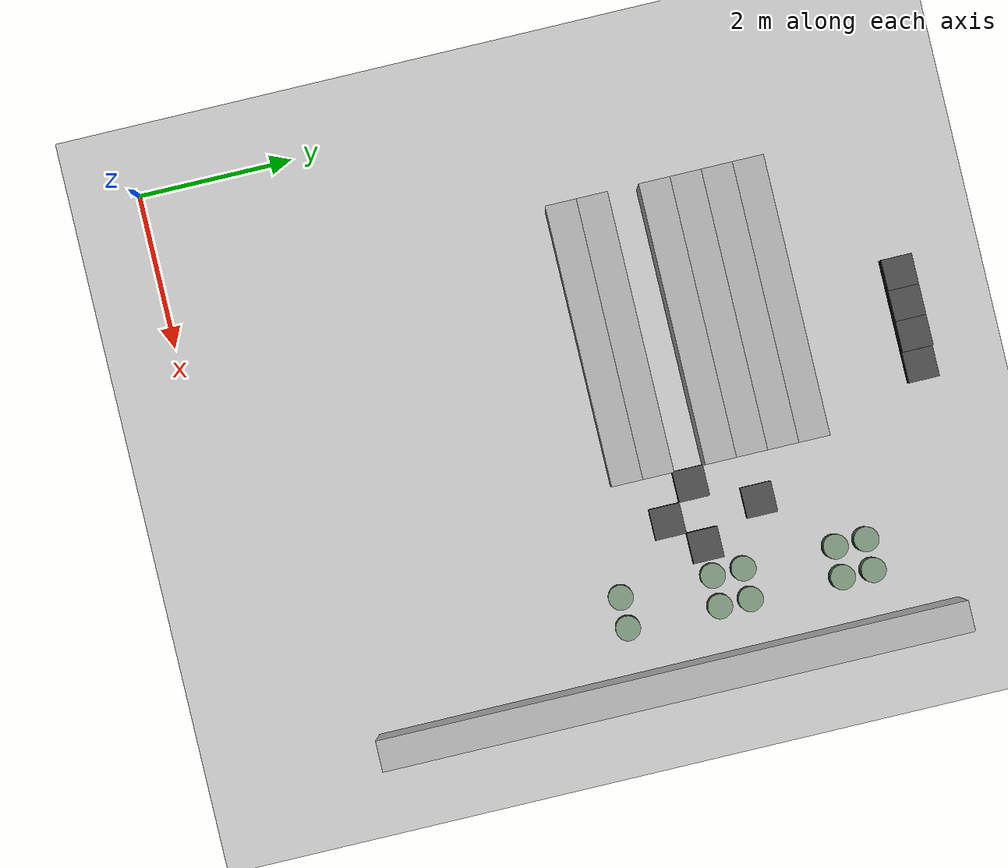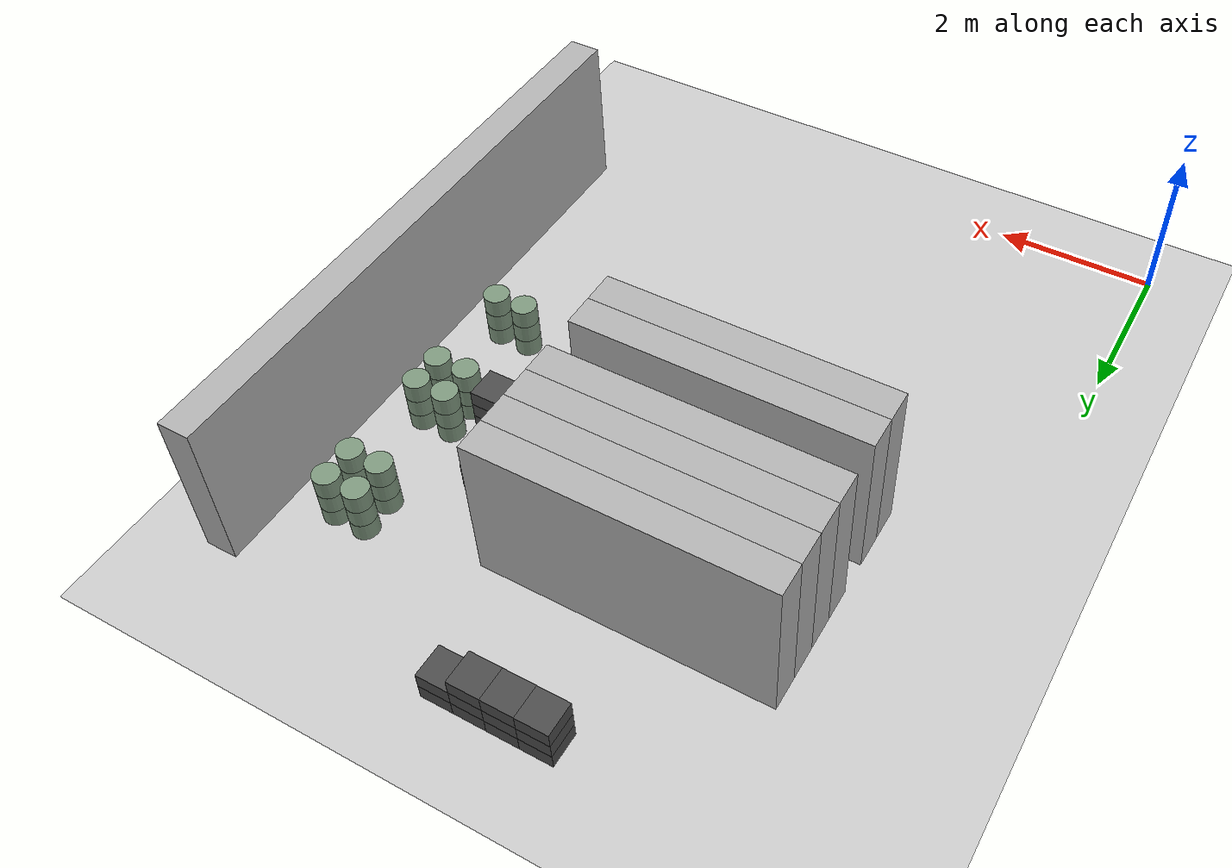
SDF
<sdf version="1.6">
 <world name="default">
  <include><uri>model://ground_plane</uri></include>
  <model name="wall_5">
   <pose frame="sim_world">7.6 5.2 1.0 0 0 0</pose>
   <static>True</static>
   <link name="wall_5_link">
    <inertial>
     <mass>100</mass>
     <inertia>
      <ixx>0.166667</ixx>
      <ixy>0</ixy>
      <ixz>0</ixz>
      <iyy>0.166667</iyy>
      <iyz>0</iyz>
      <izz>0.166667</izz>
     </inertia>
    </inertial>
    <collision name="wall_5_collision">
     <geometry><box><size>0.4 7.6000000000000005 2.0</size></box></geometry>
     <max_contacts>100</max_contacts>
    </collision>
    <visual name="wall_5_visual">
     <geometry><box><size>0.4 7.6000000000000005 2.0</size></box></geometry>
     <material><ambient>0.7 0.7 0.7 1</ambient><diffuse>0.7 0.7 0.7 1</diffuse></material>
    </visual>
   </link>
  </model>
  <model name="wall_17">
   <pose frame="sim_world">3.2 5.2 1.0 0 0 0</pose>
   <static>True</static>
   <link name="wall_17_link">
    <inertial>
     <mass>100</mass>
     <inertia>
      <ixx>0.166667</ixx>
      <ixy>0</ixy>
      <ixz>0</ixz>
      <iyy>0.166667</iyy>
      <iyz>0</iyz>
      <izz>0.166667</izz>
     </inertia>
    </inertial>
    <collision name="wall_17_collision">
     <geometry><box><size>3.6 0.4 2.0</size></box></geometry>
     <max_contacts>100</max_contacts>
    </collision>
    <visual name="wall_17_visual">
     <geometry><box><size>3.6 0.4 2.0</size></box></geometry>
     <material><ambient>0.7 0.7 0.7 1</ambient><diffuse>0.7 0.7 0.7 1</diffuse></material>
    </visual>
   </link>
  </model>
  <model name="wall_18">
   <pose frame="sim_world">3.2 5.6 1.0 0 0 0</pose>
   <static>True</static>
   <link name="wall_18_link">
    <inertial>
     <mass>100</mass>
     <inertia>
      <ixx>0.166667</ixx>
      <ixy>0</ixy>
      <ixz>0</ixz>
      <iyy>0.166667</iyy>
      <iyz>0</iyz>
      <izz>0.166667</izz>
     </inertia>
    </inertial>
    <collision name="wall_18_collision">
     <geometry><box><size>3.6 0.4 2.0</size></box></geometry>
     <max_contacts>100</max_contacts>
    </collision>
    <visual name="wall_18_visual">
     <geometry><box><size>3.6 0.4 2.0</size></box></geometry>
     <material><ambient>0.7 0.7 0.7 1</ambient><diffuse>0.7 0.7 0.7 1</diffuse></material>
    </visual>
   </link>
  </model>
  <model name="wall_19">
   <pose frame="sim_world">3.2 6.4 1.0 0 0 0</pose>
   <static>True</static>
   <link name="wall_19_link">
    <inertial>
     <mass>100</mass>
     <inertia>
      <ixx>0.166667</ixx>
      <ixy>0</ixy>
      <ixz>0</ixz>
      <iyy>0.166667</iyy>
      <iyz>0</iyz>
      <izz>0.166667</izz>
     </inertia>
    </inertial>
    <collision name="wall_19_collision">
     <geometry><box><size>3.6 0.4 2.0</size></box></geometry>
     <max_contacts>100</max_contacts>
    </collision>
    <visual name="wall_19_visual">
     <geometry><box><size>3.6 0.4 2.0</size></box></geometry>
     <material><ambient>0.7 0.7 0.7 1</ambient><diffuse>0.7 0.7 0.7 1</diffuse></material>
    </visual>
   </link>
  </model>
  <model name="wall_20">
   <pose frame="sim_world">3.2 6.8 1.0 0 0 0</pose>
   <static>True</static>
   <link name="wall_20_link">
    <inertial>
     <mass>100</mass>
     <inertia>
      <ixx>0.166667</ixx>
      <ixy>0</ixy>
      <ixz>0</ixz>
      <iyy>0.166667</iyy>
      <iyz>0</iyz>
      <izz>0.166667</izz>
     </inertia>
    </inertial>
    <collision name="wall_20_collision">
     <geometry><box><size>3.6 0.4 2.0</size></box></geometry>
     <max_contacts>100</max_contacts>
    </collision>
    <visual name="wall_20_visual">
     <geometry><box><size>3.6 0.4 2.0</size></box></geometry>
     <material><ambient>0.7 0.7 0.7 1</ambient><diffuse>0.7 0.7 0.7 1</diffuse></material>
    </visual>
   </link>
  </model>
  <model name="wall_21">
   <pose frame="sim_world">3.2 7.2 1.0 0 0 0</pose>
   <static>True</static>
   <link name="wall_21_link">
    <inertial>
     <mass>100</mass>
     <inertia>
      <ixx>0.166667</ixx>
      <ixy>0</ixy>
      <ixz>0</ixz>
      <iyy>0.166667</iyy>
      <iyz>0</iyz>
      <izz>0.166667</izz>
     </inertia>
    </inertial>
    <collision name="wall_21_collision">
     <geometry><box><size>3.6 0.4 2.0</size></box></geometry>
     <max_contacts>100</max_contacts>
    </collision>
    <visual name="wall_21_visual">
     <geometry><box><size>3.6 0.4 2.0</size></box></geometry>
     <material><ambient>0.7 0.7 0.7 1</ambient><diffuse>0.7 0.7 0.7 1</diffuse></material>
    </visual>
   </link>
  </model>
  <model name="wall_22">
   <pose frame="sim_world">3.2 7.6 1.0 0 0 0</pose>
   <static>True</static>
   <link name="wall_22_link">
    <inertial>
     <mass>100</mass>
     <inertia>
      <ixx>0.166667</ixx>
      <ixy>0</ixy>
      <ixz>0</ixz>
      <iyy>0.166667</iyy>
      <iyz>0</iyz>
      <izz>0.166667</izz>
     </inertia>
    </inertial>
    <collision name="wall_22_collision">
     <geometry><box><size>3.6 0.4 2.0</size></box></geometry>
     <max_contacts>100</max_contacts>
    </collision>
    <visual name="wall_22_visual">
     <geometry><box><size>3.6 0.4 2.0</size></box></geometry>
     <material><ambient>0.7 0.7 0.7 1</ambient><diffuse>0.7 0.7 0.7 1</diffuse></material>
    </visual>
   </link>
  </model>
  <model name="box_126">
   <pose frame="sim_world">3.2 9.2 0.1 0 -0 0</pose>
   <static>True</static>
   <link name="box_126_link">
    <inertial>
     <mass>100</mass>
     <inertia>
      <ixx>0.166667</ixx>
      <ixy>0</ixy>
      <ixz>0</ixz>
      <iyy>0.166667</iyy>
      <iyz>0</iyz>
      <izz>0.166667</izz>
     </inertia>
    </inertial>
    <collision name="box_126_collision">
     <geometry><box><size>0.4 0.4 0.2</size></box></geometry>
     <max_contacts>100</max_contacts>
    </collision>
    <visual name="box_126_visual">
     <geometry><box><size>0.4 0.4 0.2</size></box></geometry>
     <material><ambient>0.3 0.3 0.3 1</ambient><diffuse>0.3 0.3 0.3 1</diffuse></material>
    </visual>
   </link>
  </model>
  <model name="box_127">
   <pose frame="sim_world">3.2 9.2 0.3 0 -0 0</pose>
   <static>True</static>
   <link name="box_127_link">
    <inertial>
     <mass>100</mass>
     <inertia>
      <ixx>0.166667</ixx>
      <ixy>0</ixy>
      <ixz>0</ixz>
      <iyy>0.166667</iyy>
      <iyz>0</iyz>
      <izz>0.166667</izz>
     </inertia>
    </inertial>
    <collision name="box_127_collision">
     <geometry><box><size>0.4 0.4 0.2</size></box></geometry>
     <max_contacts>100</max_contacts>
    </collision>
    <visual name="box_127_visual">
     <geometry><box><size>0.4 0.4 0.2</size></box></geometry>
     <material><ambient>0.3 0.3 0.3 1</ambient><diffuse>0.3 0.3 0.3 1</diffuse></material>
    </visual>
   </link>
  </model>
  <model name="box_128">
   <pose frame="sim_world">3.2 9.2 0.5 0 -0 0</pose>
   <static>True</static>
   <link name="box_128_link">
    <inertial>
     <mass>100</mass>
     <inertia>
      <ixx>0.166667</ixx>
      <ixy>0</ixy>
      <ixz>0</ixz>
      <iyy>0.166667</iyy>
      <iyz>0</iyz>
      <izz>0.166667</izz>
     </inertia>
    </inertial>
    <collision name="box_128_collision">
     <geometry><box><size>0.4 0.4 0.2</size></box></geometry>
     <max_contacts>100</max_contacts>
    </collision>
    <visual name="box_128_visual">
     <geometry><box><size>0.4 0.4 0.2</size></box></geometry>
     <material><ambient>0.3 0.3 0.3 1</ambient><diffuse>0.3 0.3 0.3 1</diffuse></material>
    </visual>
   </link>
  </model>
  <model name="box_138">
   <pose frame="sim_world">3.6 9.2 0.1 0 -0 0</pose>
   <static>True</static>
   <link name="box_138_link">
    <inertial>
     <mass>100</mass>
     <inertia>
      <ixx>0.166667</ixx>
      <ixy>0</ixy>
      <ixz>0</ixz>
      <iyy>0.166667</iyy>
      <iyz>0</iyz>
      <izz>0.166667</izz>
     </inertia>
    </inertial>
    <collision name="box_138_collision">
     <geometry><box><size>0.4 0.4 0.2</size></box></geometry>
     <max_contacts>100</max_contacts>
    </collision>
    <visual name="box_138_visual">
     <geometry><box><size>0.4 0.4 0.2</size></box></geometry>
     <material><ambient>0.3 0.3 0.3 1</ambient><diffuse>0.3 0.3 0.3 1</diffuse></material>
    </visual>
   </link>
  </model>
  <model name="box_139">
   <pose frame="sim_world">3.6 9.2 0.3 0 -0 0</pose>
   <static>True</static>
   <link name="box_139_link">
    <inertial>
     <mass>100</mass>
     <inertia>
      <ixx>0.166667</ixx>
      <ixy>0</ixy>
      <ixz>0</ixz>
      <iyy>0.166667</iyy>
      <iyz>0</iyz>
      <izz>0.166667</izz>
     </inertia>
    </inertial>
    <collision name="box_139_collision">
     <geometry><box><size>0.4 0.4 0.2</size></box></geometry>
     <max_contacts>100</max_contacts>
    </collision>
    <visual name="box_139_visual">
     <geometry><box><size>0.4 0.4 0.2</size></box></geometry>
     <material><ambient>0.3 0.3 0.3 1</ambient><diffuse>0.3 0.3 0.3 1</diffuse></material>
    </visual>
   </link>
  </model>
  <model name="box_140">
   <pose frame="sim_world">3.6 9.2 0.5 0 -0 0</pose>
   <static>True</static>
   <link name="box_140_link">
    <inertial>
     <mass>100</mass>
     <inertia>
      <ixx>0.166667</ixx>
      <ixy>0</ixy>
      <ixz>0</ixz>
      <iyy>0.166667</iyy>
      <iyz>0</iyz>
      <izz>0.166667</izz>
     </inertia>
    </inertial>
    <collision name="box_140_collision">
     <geometry><box><size>0.4 0.4 0.2</size></box></geometry>
     <max_contacts>100</max_contacts>
    </collision>
    <visual name="box_140_visual">
     <geometry><box><size>0.4 0.4 0.2</size></box></geometry>
     <material><ambient>0.3 0.3 0.3 1</ambient><diffuse>0.3 0.3 0.3 1</diffuse></material>
    </visual>
   </link>
  </model>
  <model name="box_150">
   <pose frame="sim_world">4.0 9.2 0.1 0 -0 0</pose>
   <static>True</static>
   <link name="box_150_link">
    <inertial>
     <mass>100</mass>
     <inertia>
      <ixx>0.166667</ixx>
      <ixy>0</ixy>
      <ixz>0</ixz>
      <iyy>0.166667</iyy>
      <iyz>0</iyz>
      <izz>0.166667</izz>
     </inertia>
    </inertial>
    <collision name="box_150_collision">
     <geometry><box><size>0.4 0.4 0.2</size></box></geometry>
     <max_contacts>100</max_contacts>
    </collision>
    <visual name="box_150_visual">
     <geometry><box><size>0.4 0.4 0.2</size></box></geometry>
     <material><ambient>0.3 0.3 0.3 1</ambient><diffuse>0.3 0.3 0.3 1</diffuse></material>
    </visual>
   </link>
  </model>
  <model name="box_151">
   <pose frame="sim_world">4.0 9.2 0.3 0 -0 0</pose>
   <static>True</static>
   <link name="box_151_link">
    <inertial>
     <mass>100</mass>
     <inertia>
      <ixx>0.166667</ixx>
      <ixy>0</ixy>
      <ixz>0</ixz>
      <iyy>0.166667</iyy>
      <iyz>0</iyz>
      <izz>0.166667</izz>
     </inertia>
    </inertial>
    <collision name="box_151_collision">
     <geometry><box><size>0.4 0.4 0.2</size></box></geometry>
     <max_contacts>100</max_contacts>
    </collision>
    <visual name="box_151_visual">
     <geometry><box><size>0.4 0.4 0.2</size></box></geometry>
     <material><ambient>0.3 0.3 0.3 1</ambient><diffuse>0.3 0.3 0.3 1</diffuse></material>
    </visual>
   </link>
  </model>
  <model name="box_152">
   <pose frame="sim_world">4.0 9.2 0.5 0 -0 0</pose>
   <static>True</static>
   <link name="box_152_link">
    <inertial>
     <mass>100</mass>
     <inertia>
      <ixx>0.166667</ixx>
      <ixy>0</ixy>
      <ixz>0</ixz>
      <iyy>0.166667</iyy>
      <iyz>0</iyz>
      <izz>0.166667</izz>
     </inertia>
    </inertial>
    <collision name="box_152_collision">
     <geometry><box><size>0.4 0.4 0.2</size></box></geometry>
     <max_contacts>100</max_contacts>
    </collision>
    <visual name="box_152_visual">
     <geometry><box><size>0.4 0.4 0.2</size></box></geometry>
     <material><ambient>0.3 0.3 0.3 1</ambient><diffuse>0.3 0.3 0.3 1</diffuse></material>
    </visual>
   </link>
  </model>
  <model name="box_162">
   <pose frame="sim_world">4.4 9.2 0.1 0 -0 0</pose>
   <static>True</static>
   <link name="box_162_link">
    <inertial>
     <mass>100</mass>
     <inertia>
      <ixx>0.166667</ixx>
      <ixy>0</ixy>
      <ixz>0</ixz>
      <iyy>0.166667</iyy>
      <iyz>0</iyz>
      <izz>0.166667</izz>
     </inertia>
    </inertial>
    <collision name="box_162_collision">
     <geometry><box><size>0.4 0.4 0.2</size></box></geometry>
     <max_contacts>100</max_contacts>
    </collision>
    <visual name="box_162_visual">
     <geometry><box><size>0.4 0.4 0.2</size></box></geometry>
     <material><ambient>0.3 0.3 0.3 1</ambient><diffuse>0.3 0.3 0.3 1</diffuse></material>
    </visual>
   </link>
  </model>
  <model name="box_163">
   <pose frame="sim_world">4.4 9.2 0.3 0 -0 0</pose>
   <static>True</static>
   <link name="box_163_link">
    <inertial>
     <mass>100</mass>
     <inertia>
      <ixx>0.166667</ixx>
      <ixy>0</ixy>
      <ixz>0</ixz>
      <iyy>0.166667</iyy>
      <iyz>0</iyz>
      <izz>0.166667</izz>
     </inertia>
    </inertial>
    <collision name="box_163_collision">
     <geometry><box><size>0.4 0.4 0.2</size></box></geometry>
     <max_contacts>100</max_contacts>
    </collision>
    <visual name="box_163_visual">
     <geometry><box><size>0.4 0.4 0.2</size></box></geometry>
     <material><ambient>0.3 0.3 0.3 1</ambient><diffuse>0.3 0.3 0.3 1</diffuse></material>
    </visual>
   </link>
  </model>
  <model name="box_186">
   <pose frame="sim_world">5.2 6.0 0.1 0 -0 0</pose>
   <static>True</static>
   <link name="box_186_link">
    <inertial>
     <mass>100</mass>
     <inertia>
      <ixx>0.166667</ixx>
      <ixy>0</ixy>
      <ixz>0</ixz>
      <iyy>0.166667</iyy>
      <iyz>0</iyz>
      <izz>0.166667</izz>
     </inertia>
    </inertial>
    <collision name="box_186_collision">
     <geometry><box><size>0.4 0.4 0.2</size></box></geometry>
     <max_contacts>100</max_contacts>
    </collision>
    <visual name="box_186_visual">
     <geometry><box><size>0.4 0.4 0.2</size></box></geometry>
     <material><ambient>0.3 0.3 0.3 1</ambient><diffuse>0.3 0.3 0.3 1</diffuse></material>
    </visual>
   </link>
  </model>
  <model name="box_187">
   <pose frame="sim_world">5.2 6.0 0.3 0 -0 0</pose>
   <static>True</static>
   <link name="box_187_link">
    <inertial>
     <mass>100</mass>
     <inertia>
      <ixx>0.166667</ixx>
      <ixy>0</ixy>
      <ixz>0</ixz>
      <iyy>0.166667</iyy>
      <iyz>0</iyz>
      <izz>0.166667</izz>
     </inertia>
    </inertial>
    <collision name="box_187_collision">
     <geometry><box><size>0.4 0.4 0.2</size></box></geometry>
     <max_contacts>100</max_contacts>
    </collision>
    <visual name="box_187_visual">
     <geometry><box><size>0.4 0.4 0.2</size></box></geometry>
     <material><ambient>0.3 0.3 0.3 1</ambient><diffuse>0.3 0.3 0.3 1</diffuse></material>
    </visual>
   </link>
  </model>
  <model name="box_188">
   <pose frame="sim_world">5.2 6.0 0.5 0 -0 0</pose>
   <static>True</static>
   <link name="box_188_link">
    <inertial>
     <mass>100</mass>
     <inertia>
      <ixx>0.166667</ixx>
      <ixy>0</ixy>
      <ixz>0</ixz>
      <iyy>0.166667</iyy>
      <iyz>0</iyz>
      <izz>0.166667</izz>
     </inertia>
    </inertial>
    <collision name="box_188_collision">
     <geometry><box><size>0.4 0.4 0.2</size></box></geometry>
     <max_contacts>100</max_contacts>
    </collision>
    <visual name="box_188_visual">
     <geometry><box><size>0.4 0.4 0.2</size></box></geometry>
     <material><ambient>0.3 0.3 0.3 1</ambient><diffuse>0.3 0.3 0.3 1</diffuse></material>
    </visual>
   </link>
  </model>
  <model name="box_189">
   <pose frame="sim_world">5.6 5.6 0.1 0 -0 0</pose>
   <static>True</static>
   <link name="box_189_link">
    <inertial>
     <mass>100</mass>
     <inertia>
      <ixx>0.166667</ixx>
      <ixy>0</ixy>
      <ixz>0</ixz>
      <iyy>0.166667</iyy>
      <iyz>0</iyz>
      <izz>0.166667</izz>
     </inertia>
    </inertial>
    <collision name="box_189_collision">
     <geometry><box><size>0.4 0.4 0.2</size></box></geometry>
     <max_contacts>100</max_contacts>
    </collision>
    <visual name="box_189_visual">
     <geometry><box><size>0.4 0.4 0.2</size></box></geometry>
     <material><ambient>0.3 0.3 0.3 1</ambient><diffuse>0.3 0.3 0.3 1</diffuse></material>
    </visual>
   </link>
  </model>
  <model name="box_190">
   <pose frame="sim_world">5.6 5.6 0.3 0 -0 0</pose>
   <static>True</static>
   <link name="box_190_link">
    <inertial>
     <mass>100</mass>
     <inertia>
      <ixx>0.166667</ixx>
      <ixy>0</ixy>
      <ixz>0</ixz>
      <iyy>0.166667</iyy>
      <iyz>0</iyz>
      <izz>0.166667</izz>
     </inertia>
    </inertial>
    <collision name="box_190_collision">
     <geometry><box><size>0.4 0.4 0.2</size></box></geometry>
     <max_contacts>100</max_contacts>
    </collision>
    <visual name="box_190_visual">
     <geometry><box><size>0.4 0.4 0.2</size></box></geometry>
     <material><ambient>0.3 0.3 0.3 1</ambient><diffuse>0.3 0.3 0.3 1</diffuse></material>
    </visual>
   </link>
  </model>
  <model name="box_191">
   <pose frame="sim_world">5.6 5.6 0.5 0 -0 0</pose>
   <static>True</static>
   <link name="box_191_link">
    <inertial>
     <mass>100</mass>
     <inertia>
      <ixx>0.166667</ixx>
      <ixy>0</ixy>
      <ixz>0</ixz>
      <iyy>0.166667</iyy>
      <iyz>0</iyz>
      <izz>0.166667</izz>
     </inertia>
    </inertial>
    <collision name="box_191_collision">
     <geometry><box><size>0.4 0.4 0.2</size></box></geometry>
     <max_contacts>100</max_contacts>
    </collision>
    <visual name="box_191_visual">
     <geometry><box><size>0.4 0.4 0.2</size></box></geometry>
     <material><ambient>0.3 0.3 0.3 1</ambient><diffuse>0.3 0.3 0.3 1</diffuse></material>
    </visual>
   </link>
  </model>
  <model name="box_192">
   <pose frame="sim_world">5.6 6.8 0.1 0 -0 0</pose>
   <static>True</static>
   <link name="box_192_link">
    <inertial>
     <mass>100</mass>
     <inertia>
      <ixx>0.166667</ixx>
      <ixy>0</ixy>
      <ixz>0</ixz>
      <iyy>0.166667</iyy>
      <iyz>0</iyz>
      <izz>0.166667</izz>
     </inertia>
    </inertial>
    <collision name="box_192_collision">
     <geometry><box><size>0.4 0.4 0.2</size></box></geometry>
     <max_contacts>100</max_contacts>
    </collision>
    <visual name="box_192_visual">
     <geometry><box><size>0.4 0.4 0.2</size></box></geometry>
     <material><ambient>0.3 0.3 0.3 1</ambient><diffuse>0.3 0.3 0.3 1</diffuse></material>
    </visual>
   </link>
  </model>
  <model name="box_193">
   <pose frame="sim_world">5.6 6.8 0.3 0 -0 0</pose>
   <static>True</static>
   <link name="box_193_link">
    <inertial>
     <mass>100</mass>
     <inertia>
      <ixx>0.166667</ixx>
      <ixy>0</ixy>
      <ixz>0</ixz>
      <iyy>0.166667</iyy>
      <iyz>0</iyz>
      <izz>0.166667</izz>
     </inertia>
    </inertial>
    <collision name="box_193_collision">
     <geometry><box><size>0.4 0.4 0.2</size></box></geometry>
     <max_contacts>100</max_contacts>
    </collision>
    <visual name="box_193_visual">
     <geometry><box><size>0.4 0.4 0.2</size></box></geometry>
     <material><ambient>0.3 0.3 0.3 1</ambient><diffuse>0.3 0.3 0.3 1</diffuse></material>
    </visual>
   </link>
  </model>
  <model name="box_194">
   <pose frame="sim_world">6.0 6.0 0.1 0 -0 0</pose>
   <static>True</static>
   <link name="box_194_link">
    <inertial>
     <mass>100</mass>
     <inertia>
      <ixx>0.166667</ixx>
      <ixy>0</ixy>
      <ixz>0</ixz>
      <iyy>0.166667</iyy>
      <iyz>0</iyz>
      <izz>0.166667</izz>
     </inertia>
    </inertial>
    <collision name="box_194_collision">
     <geometry><box><size>0.4 0.4 0.2</size></box></geometry>
     <max_contacts>100</max_contacts>
    </collision>
    <visual name="box_194_visual">
     <geometry><box><size>0.4 0.4 0.2</size></box></geometry>
     <material><ambient>0.3 0.3 0.3 1</ambient><diffuse>0.3 0.3 0.3 1</diffuse></material>
    </visual>
   </link>
  </model>
  <model name="box_195">
   <pose frame="sim_world">6.0 6.0 0.3 0 -0 0</pose>
   <static>True</static>
   <link name="box_195_link">
    <inertial>
     <mass>100</mass>
     <inertia>
      <ixx>0.166667</ixx>
      <ixy>0</ixy>
      <ixz>0</ixz>
      <iyy>0.166667</iyy>
      <iyz>0</iyz>
      <izz>0.166667</izz>
     </inertia>
    </inertial>
    <collision name="box_195_collision">
     <geometry><box><size>0.4 0.4 0.2</size></box></geometry>
     <max_contacts>100</max_contacts>
    </collision>
    <visual name="box_195_visual">
     <geometry><box><size>0.4 0.4 0.2</size></box></geometry>
     <material><ambient>0.3 0.3 0.3 1</ambient><diffuse>0.3 0.3 0.3 1</diffuse></material>
    </visual>
   </link>
  </model>
  <model name="box_196">
   <pose frame="sim_world">6.0 6.0 0.5 0 -0 0</pose>
   <static>True</static>
   <link name="box_196_link">
    <inertial>
     <mass>100</mass>
     <inertia>
      <ixx>0.166667</ixx>
      <ixy>0</ixy>
      <ixz>0</ixz>
      <iyy>0.166667</iyy>
      <iyz>0</iyz>
      <izz>0.166667</izz>
     </inertia>
    </inertial>
    <collision name="box_196_collision">
     <geometry><box><size>0.4 0.4 0.2</size></box></geometry>
     <max_contacts>100</max_contacts>
    </collision>
    <visual name="box_196_visual">
     <geometry><box><size>0.4 0.4 0.2</size></box></geometry>
     <material><ambient>0.3 0.3 0.3 1</ambient><diffuse>0.3 0.3 0.3 1</diffuse></material>
    </visual>
   </link>
  </model>
  <model name="cylinder_21">
   <pose frame="sim_world">6.4 4.8 0.12 0 -0 0</pose>
   <static>True</static>
   <link name="cylinder_21_link">
    <inertial>
     <mass>100</mass>
     <inertia><ixx>0.145833</ixx><ixy>0</ixy><ixz>0</ixz><iyy>0.145833</iyy><iyz>0</iyz><izz>0.125</izz></inertia>
    </inertial>
    <collision name="cylinder_21_collision">
     <geometry><cylinder><length>0.24</length><radius>0.16</radius></cylinder></geometry>
     <max_contacts>100</max_contacts>
    </collision>
    <visual name="cylinder_21_visual">
     <geometry><cylinder><length>0.24</length><radius>0.16</radius></cylinder></geometry>
     <material><ambient>0.5 0.6 0.5 1</ambient><diffuse>0.5 0.6 0.5 1</diffuse></material>
    </visual>
   </link>
  </model>
  <model name="cylinder_22">
   <pose frame="sim_world">6.4 4.8 0.36 0 -0 0</pose>
   <static>True</static>
   <link name="cylinder_22_link">
    <inertial>
     <mass>100</mass>
     <inertia><ixx>0.145833</ixx><ixy>0</ixy><ixz>0</ixz><iyy>0.145833</iyy><iyz>0</iyz><izz>0.125</izz></inertia>
    </inertial>
    <collision name="cylinder_22_collision">
     <geometry><cylinder><length>0.24</length><radius>0.16</radius></cylinder></geometry>
     <max_contacts>100</max_contacts>
    </collision>
    <visual name="cylinder_22_visual">
     <geometry><cylinder><length>0.24</length><radius>0.16</radius></cylinder></geometry>
     <material><ambient>0.5 0.6 0.5 1</ambient><diffuse>0.5 0.6 0.5 1</diffuse></material>
    </visual>
   </link>
  </model>
  <model name="cylinder_23">
   <pose frame="sim_world">6.4 4.8 0.6 0 -0 0</pose>
   <static>True</static>
   <link name="cylinder_23_link">
    <inertial>
     <mass>100</mass>
     <inertia><ixx>0.145833</ixx><ixy>0</ixy><ixz>0</ixz><iyy>0.145833</iyy><iyz>0</iyz><izz>0.125</izz></inertia>
    </inertial>
    <collision name="cylinder_23_collision">
     <geometry><cylinder><length>0.24</length><radius>0.16</radius></cylinder></geometry>
     <max_contacts>100</max_contacts>
    </collision>
    <visual name="cylinder_23_visual">
     <geometry><cylinder><length>0.24</length><radius>0.16</radius></cylinder></geometry>
     <material><ambient>0.5 0.6 0.5 1</ambient><diffuse>0.5 0.6 0.5 1</diffuse></material>
    </visual>
   </link>
  </model>
  <model name="cylinder_24">
   <pose frame="sim_world">6.4 6.0 0.12 0 -0 0</pose>
   <static>True</static>
   <link name="cylinder_24_link">
    <inertial>
     <mass>100</mass>
     <inertia><ixx>0.145833</ixx><ixy>0</ixy><ixz>0</ixz><iyy>0.145833</iyy><iyz>0</iyz><izz>0.125</izz></inertia>
    </inertial>
    <collision name="cylinder_24_collision">
     <geometry><cylinder><length>0.24</length><radius>0.16</radius></cylinder></geometry>
     <max_contacts>100</max_contacts>
    </collision>
    <visual name="cylinder_24_visual">
     <geometry><cylinder><length>0.24</length><radius>0.16</radius></cylinder></geometry>
     <material><ambient>0.5 0.6 0.5 1</ambient><diffuse>0.5 0.6 0.5 1</diffuse></material>
    </visual>
   </link>
  </model>
  <model name="cylinder_25">
   <pose frame="sim_world">6.4 6.0 0.36 0 -0 0</pose>
   <static>True</static>
   <link name="cylinder_25_link">
    <inertial>
     <mass>100</mass>
     <inertia><ixx>0.145833</ixx><ixy>0</ixy><ixz>0</ixz><iyy>0.145833</iyy><iyz>0</iyz><izz>0.125</izz></inertia>
    </inertial>
    <collision name="cylinder_25_collision">
     <geometry><cylinder><length>0.24</length><radius>0.16</radius></cylinder></geometry>
     <max_contacts>100</max_contacts>
    </collision>
    <visual name="cylinder_25_visual">
     <geometry><cylinder><length>0.24</length><radius>0.16</radius></cylinder></geometry>
     <material><ambient>0.5 0.6 0.5 1</ambient><diffuse>0.5 0.6 0.5 1</diffuse></material>
    </visual>
   </link>
  </model>
  <model name="cylinder_26">
   <pose frame="sim_world">6.4 6.0 0.6 0 -0 0</pose>
   <static>True</static>
   <link name="cylinder_26_link">
    <inertial>
     <mass>100</mass>
     <inertia><ixx>0.145833</ixx><ixy>0</ixy><ixz>0</ixz><iyy>0.145833</iyy><iyz>0</iyz><izz>0.125</izz></inertia>
    </inertial>
    <collision name="cylinder_26_collision">
     <geometry><cylinder><length>0.24</length><radius>0.16</radius></cylinder></geometry>
     <max_contacts>100</max_contacts>
    </collision>
    <visual name="cylinder_26_visual">
     <geometry><cylinder><length>0.24</length><radius>0.16</radius></cylinder></geometry>
     <material><ambient>0.5 0.6 0.5 1</ambient><diffuse>0.5 0.6 0.5 1</diffuse></material>
    </visual>
   </link>
  </model>
  <model name="cylinder_27">
   <pose frame="sim_world">6.4 6.4 0.12 0 -0 0</pose>
   <static>True</static>
   <link name="cylinder_27_link">
    <inertial>
     <mass>100</mass>
     <inertia><ixx>0.145833</ixx><ixy>0</ixy><ixz>0</ixz><iyy>0.145833</iyy><iyz>0</iyz><izz>0.125</izz></inertia>
    </inertial>
    <collision name="cylinder_27_collision">
     <geometry><cylinder><length>0.24</length><radius>0.16</radius></cylinder></geometry>
     <max_contacts>100</max_contacts>
    </collision>
    <visual name="cylinder_27_visual">
     <geometry><cylinder><length>0.24</length><radius>0.16</radius></cylinder></geometry>
     <material><ambient>0.5 0.6 0.5 1</ambient><diffuse>0.5 0.6 0.5 1</diffuse></material>
    </visual>
   </link>
  </model>
  <model name="cylinder_28">
   <pose frame="sim_world">6.4 6.4 0.36 0 -0 0</pose>
   <static>True</static>
   <link name="cylinder_28_link">
    <inertial>
     <mass>100</mass>
     <inertia><ixx>0.145833</ixx><ixy>0</ixy><ixz>0</ixz><iyy>0.145833</iyy><iyz>0</iyz><izz>0.125</izz></inertia>
    </inertial>
    <collision name="cylinder_28_collision">
     <geometry><cylinder><length>0.24</length><radius>0.16</radius></cylinder></geometry>
     <max_contacts>100</max_contacts>
    </collision>
    <visual name="cylinder_28_visual">
     <geometry><cylinder><length>0.24</length><radius>0.16</radius></cylinder></geometry>
     <material><ambient>0.5 0.6 0.5 1</ambient><diffuse>0.5 0.6 0.5 1</diffuse></material>
    </visual>
   </link>
  </model>
  <model name="cylinder_29">
   <pose frame="sim_world">6.4 6.4 0.6 0 -0 0</pose>
   <static>True</static>
   <link name="cylinder_29_link">
    <inertial>
     <mass>100</mass>
     <inertia><ixx>0.145833</ixx><ixy>0</ixy><ixz>0</ixz><iyy>0.145833</iyy><iyz>0</iyz><izz>0.125</izz></inertia>
    </inertial>
    <collision name="cylinder_29_collision">
     <geometry><cylinder><length>0.24</length><radius>0.16</radius></cylinder></geometry>
     <max_contacts>100</max_contacts>
    </collision>
    <visual name="cylinder_29_visual">
     <geometry><cylinder><length>0.24</length><radius>0.16</radius></cylinder></geometry>
     <material><ambient>0.5 0.6 0.5 1</ambient><diffuse>0.5 0.6 0.5 1</diffuse></material>
    </visual>
   </link>
  </model>
  <model name="cylinder_30">
   <pose frame="sim_world">6.4 7.6 0.12 0 -0 0</pose>
   <static>True</static>
   <link name="cylinder_30_link">
    <inertial>
     <mass>100</mass>
     <inertia><ixx>0.145833</ixx><ixy>0</ixy><ixz>0</ixz><iyy>0.145833</iyy><iyz>0</iyz><izz>0.125</izz></inertia>
    </inertial>
    <collision name="cylinder_30_collision">
     <geometry><cylinder><length>0.24</length><radius>0.16</radius></cylinder></geometry>
     <max_contacts>100</max_contacts>
    </collision>
    <visual name="cylinder_30_visual">
     <geometry><cylinder><length>0.24</length><radius>0.16</radius></cylinder></geometry>
     <material><ambient>0.5 0.6 0.5 1</ambient><diffuse>0.5 0.6 0.5 1</diffuse></material>
    </visual>
   </link>
  </model>
  <model name="cylinder_31">
   <pose frame="sim_world">6.4 7.6 0.36 0 -0 0</pose>
   <static>True</static>
   <link name="cylinder_31_link">
    <inertial>
     <mass>100</mass>
     <inertia><ixx>0.145833</ixx><ixy>0</ixy><ixz>0</ixz><iyy>0.145833</iyy><iyz>0</iyz><izz>0.125</izz></inertia>
    </inertial>
    <collision name="cylinder_31_collision">
     <geometry><cylinder><length>0.24</length><radius>0.16</radius></cylinder></geometry>
     <max_contacts>100</max_contacts>
    </collision>
    <visual name="cylinder_31_visual">
     <geometry><cylinder><length>0.24</length><radius>0.16</radius></cylinder></geometry>
     <material><ambient>0.5 0.6 0.5 1</ambient><diffuse>0.5 0.6 0.5 1</diffuse></material>
    </visual>
   </link>
  </model>
  <model name="cylinder_32">
   <pose frame="sim_world">6.4 7.6 0.6 0 -0 0</pose>
   <static>True</static>
   <link name="cylinder_32_link">
    <inertial>
     <mass>100</mass>
     <inertia><ixx>0.145833</ixx><ixy>0</ixy><ixz>0</ixz><iyy>0.145833</iyy><iyz>0</iyz><izz>0.125</izz></inertia>
    </inertial>
    <collision name="cylinder_32_collision">
     <geometry><cylinder><length>0.24</length><radius>0.16</radius></cylinder></geometry>
     <max_contacts>100</max_contacts>
    </collision>
    <visual name="cylinder_32_visual">
     <geometry><cylinder><length>0.24</length><radius>0.16</radius></cylinder></geometry>
     <material><ambient>0.5 0.6 0.5 1</ambient><diffuse>0.5 0.6 0.5 1</diffuse></material>
    </visual>
   </link>
  </model>
  <model name="cylinder_33">
   <pose frame="sim_world">6.4 8.0 0.12 0 -0 0</pose>
   <static>True</static>
   <link name="cylinder_33_link">
    <inertial>
     <mass>100</mass>
     <inertia><ixx>0.145833</ixx><ixy>0</ixy><ixz>0</ixz><iyy>0.145833</iyy><iyz>0</iyz><izz>0.125</izz></inertia>
    </inertial>
    <collision name="cylinder_33_collision">
     <geometry><cylinder><length>0.24</length><radius>0.16</radius></cylinder></geometry>
     <max_contacts>100</max_contacts>
    </collision>
    <visual name="cylinder_33_visual">
     <geometry><cylinder><length>0.24</length><radius>0.16</radius></cylinder></geometry>
     <material><ambient>0.5 0.6 0.5 1</ambient><diffuse>0.5 0.6 0.5 1</diffuse></material>
    </visual>
   </link>
  </model>
  <model name="cylinder_34">
   <pose frame="sim_world">6.4 8.0 0.36 0 -0 0</pose>
   <static>True</static>
   <link name="cylinder_34_link">
    <inertial>
     <mass>100</mass>
     <inertia><ixx>0.145833</ixx><ixy>0</ixy><ixz>0</ixz><iyy>0.145833</iyy><iyz>0</iyz><izz>0.125</izz></inertia>
    </inertial>
    <collision name="cylinder_34_collision">
     <geometry><cylinder><length>0.24</length><radius>0.16</radius></cylinder></geometry>
     <max_contacts>100</max_contacts>
    </collision>
    <visual name="cylinder_34_visual">
     <geometry><cylinder><length>0.24</length><radius>0.16</radius></cylinder></geometry>
     <material><ambient>0.5 0.6 0.5 1</ambient><diffuse>0.5 0.6 0.5 1</diffuse></material>
    </visual>
   </link>
  </model>
  <model name="cylinder_35">
   <pose frame="sim_world">6.4 8.0 0.6 0 -0 0</pose>
   <static>True</static>
   <link name="cylinder_35_link">
    <inertial>
     <mass>100</mass>
     <inertia><ixx>0.145833</ixx><ixy>0</ixy><ixz>0</ixz><iyy>0.145833</iyy><iyz>0</iyz><izz>0.125</izz></inertia>
    </inertial>
    <collision name="cylinder_35_collision">
     <geometry><cylinder><length>0.24</length><radius>0.16</radius></cylinder></geometry>
     <max_contacts>100</max_contacts>
    </collision>
    <visual name="cylinder_35_visual">
     <geometry><cylinder><length>0.24</length><radius>0.16</radius></cylinder></geometry>
     <material><ambient>0.5 0.6 0.5 1</ambient><diffuse>0.5 0.6 0.5 1</diffuse></material>
    </visual>
   </link>
  </model>
  <model name="cylinder_51">
   <pose frame="sim_world">6.8 4.8 0.12 0 -0 0</pose>
   <static>True</static>
   <link name="cylinder_51_link">
    <inertial>
     <mass>100</mass>
     <inertia><ixx>0.145833</ixx><ixy>0</ixy><ixz>0</ixz><iyy>0.145833</iyy><iyz>0</iyz><izz>0.125</izz></inertia>
    </inertial>
    <collision name="cylinder_51_collision">
     <geometry><cylinder><length>0.24</length><radius>0.16</radius></cylinder></geometry>
     <max_contacts>100</max_contacts>
    </collision>
    <visual name="cylinder_51_visual">
     <geometry><cylinder><length>0.24</length><radius>0.16</radius></cylinder></geometry>
     <material><ambient>0.5 0.6 0.5 1</ambient><diffuse>0.5 0.6 0.5 1</diffuse></material>
    </visual>
   </link>
  </model>
  <model name="cylinder_52">
   <pose frame="sim_world">6.8 4.8 0.36 0 -0 0</pose>
   <static>True</static>
   <link name="cylinder_52_link">
    <inertial>
     <mass>100</mass>
     <inertia><ixx>0.145833</ixx><ixy>0</ixy><ixz>0</ixz><iyy>0.145833</iyy><iyz>0</iyz><izz>0.125</izz></inertia>
    </inertial>
    <collision name="cylinder_52_collision">
     <geometry><cylinder><length>0.24</length><radius>0.16</radius></cylinder></geometry>
     <max_contacts>100</max_contacts>
    </collision>
    <visual name="cylinder_52_visual">
     <geometry><cylinder><length>0.24</length><radius>0.16</radius></cylinder></geometry>
     <material><ambient>0.5 0.6 0.5 1</ambient><diffuse>0.5 0.6 0.5 1</diffuse></material>
    </visual>
   </link>
  </model>
  <model name="cylinder_53">
   <pose frame="sim_world">6.8 4.8 0.6 0 -0 0</pose>
   <static>True</static>
   <link name="cylinder_53_link">
    <inertial>
     <mass>100</mass>
     <inertia><ixx>0.145833</ixx><ixy>0</ixy><ixz>0</ixz><iyy>0.145833</iyy><iyz>0</iyz><izz>0.125</izz></inertia>
    </inertial>
    <collision name="cylinder_53_collision">
     <geometry><cylinder><length>0.24</length><radius>0.16</radius></cylinder></geometry>
     <max_contacts>100</max_contacts>
    </collision>
    <visual name="cylinder_53_visual">
     <geometry><cylinder><length>0.24</length><radius>0.16</radius></cylinder></geometry>
     <material><ambient>0.5 0.6 0.5 1</ambient><diffuse>0.5 0.6 0.5 1</diffuse></material>
    </visual>
   </link>
  </model>
  <model name="cylinder_54">
   <pose frame="sim_world">6.8 6.0 0.12 0 -0 0</pose>
   <static>True</static>
   <link name="cylinder_54_link">
    <inertial>
     <mass>100</mass>
     <inertia><ixx>0.145833</ixx><ixy>0</ixy><ixz>0</ixz><iyy>0.145833</iyy><iyz>0</iyz><izz>0.125</izz></inertia>
    </inertial>
    <collision name="cylinder_54_collision">
     <geometry><cylinder><length>0.24</length><radius>0.16</radius></cylinder></geometry>
     <max_contacts>100</max_contacts>
    </collision>
    <visual name="cylinder_54_visual">
     <geometry><cylinder><length>0.24</length><radius>0.16</radius></cylinder></geometry>
     <material><ambient>0.5 0.6 0.5 1</ambient><diffuse>0.5 0.6 0.5 1</diffuse></material>
    </visual>
   </link>
  </model>
  <model name="cylinder_55">
   <pose frame="sim_world">6.8 6.0 0.36 0 -0 0</pose>
   <static>True</static>
   <link name="cylinder_55_link">
    <inertial>
     <mass>100</mass>
     <inertia><ixx>0.145833</ixx><ixy>0</ixy><ixz>0</ixz><iyy>0.145833</iyy><iyz>0</iyz><izz>0.125</izz></inertia>
    </inertial>
    <collision name="cylinder_55_collision">
     <geometry><cylinder><length>0.24</length><radius>0.16</radius></cylinder></geometry>
     <max_contacts>100</max_contacts>
    </collision>
    <visual name="cylinder_55_visual">
     <geometry><cylinder><length>0.24</length><radius>0.16</radius></cylinder></geometry>
     <material><ambient>0.5 0.6 0.5 1</ambient><diffuse>0.5 0.6 0.5 1</diffuse></material>
    </visual>
   </link>
  </model>
  <model name="cylinder_56">
   <pose frame="sim_world">6.8 6.0 0.6 0 -0 0</pose>
   <static>True</static>
   <link name="cylinder_56_link">
    <inertial>
     <mass>100</mass>
     <inertia><ixx>0.145833</ixx><ixy>0</ixy><ixz>0</ixz><iyy>0.145833</iyy><iyz>0</iyz><izz>0.125</izz></inertia>
    </inertial>
    <collision name="cylinder_56_collision">
     <geometry><cylinder><length>0.24</length><radius>0.16</radius></cylinder></geometry>
     <max_contacts>100</max_contacts>
    </collision>
    <visual name="cylinder_56_visual">
     <geometry><cylinder><length>0.24</length><radius>0.16</radius></cylinder></geometry>
     <material><ambient>0.5 0.6 0.5 1</ambient><diffuse>0.5 0.6 0.5 1</diffuse></material>
    </visual>
   </link>
  </model>
  <model name="cylinder_57">
   <pose frame="sim_world">6.8 6.4 0.12 0 -0 0</pose>
   <static>True</static>
   <link name="cylinder_57_link">
    <inertial>
     <mass>100</mass>
     <inertia><ixx>0.145833</ixx><ixy>0</ixy><ixz>0</ixz><iyy>0.145833</iyy><iyz>0</iyz><izz>0.125</izz></inertia>
    </inertial>
    <collision name="cylinder_57_collision">
     <geometry><cylinder><length>0.24</length><radius>0.16</radius></cylinder></geometry>
     <max_contacts>100</max_contacts>
    </collision>
    <visual name="cylinder_57_visual">
     <geometry><cylinder><length>0.24</length><radius>0.16</radius></cylinder></geometry>
     <material><ambient>0.5 0.6 0.5 1</ambient><diffuse>0.5 0.6 0.5 1</diffuse></material>
    </visual>
   </link>
  </model>
  <model name="cylinder_58">
   <pose frame="sim_world">6.8 6.4 0.36 0 -0 0</pose>
   <static>True</static>
   <link name="cylinder_58_link">
    <inertial>
     <mass>100</mass>
     <inertia><ixx>0.145833</ixx><ixy>0</ixy><ixz>0</ixz><iyy>0.145833</iyy><iyz>0</iyz><izz>0.125</izz></inertia>
    </inertial>
    <collision name="cylinder_58_collision">
     <geometry><cylinder><length>0.24</length><radius>0.16</radius></cylinder></geometry>
     <max_contacts>100</max_contacts>
    </collision>
    <visual name="cylinder_58_visual">
     <geometry><cylinder><length>0.24</length><radius>0.16</radius></cylinder></geometry>
     <material><ambient>0.5 0.6 0.5 1</ambient><diffuse>0.5 0.6 0.5 1</diffuse></material>
    </visual>
   </link>
  </model>
  <model name="cylinder_59">
   <pose frame="sim_world">6.8 6.4 0.6 0 -0 0</pose>
   <static>True</static>
   <link name="cylinder_59_link">
    <inertial>
     <mass>100</mass>
     <inertia><ixx>0.145833</ixx><ixy>0</ixy><ixz>0</ixz><iyy>0.145833</iyy><iyz>0</iyz><izz>0.125</izz></inertia>
    </inertial>
    <collision name="cylinder_59_collision">
     <geometry><cylinder><length>0.24</length><radius>0.16</radius></cylinder></geometry>
     <max_contacts>100</max_contacts>
    </collision>
    <visual name="cylinder_59_visual">
     <geometry><cylinder><length>0.24</length><radius>0.16</radius></cylinder></geometry>
     <material><ambient>0.5 0.6 0.5 1</ambient><diffuse>0.5 0.6 0.5 1</diffuse></material>
    </visual>
   </link>
  </model>
  <model name="cylinder_60">
   <pose frame="sim_world">6.8 7.6 0.12 0 -0 0</pose>
   <static>True</static>
   <link name="cylinder_60_link">
    <inertial>
     <mass>100</mass>
     <inertia><ixx>0.145833</ixx><ixy>0</ixy><ixz>0</ixz><iyy>0.145833</iyy><iyz>0</iyz><izz>0.125</izz></inertia>
    </inertial>
    <collision name="cylinder_60_collision">
     <geometry><cylinder><length>0.24</length><radius>0.16</radius></cylinder></geometry>
     <max_contacts>100</max_contacts>
    </collision>
    <visual name="cylinder_60_visual">
     <geometry><cylinder><length>0.24</length><radius>0.16</radius></cylinder></geometry>
     <material><ambient>0.5 0.6 0.5 1</ambient><diffuse>0.5 0.6 0.5 1</diffuse></material>
    </visual>
   </link>
  </model>
  <model name="cylinder_61">
   <pose frame="sim_world">6.8 7.6 0.36 0 -0 0</pose>
   <static>True</static>
   <link name="cylinder_61_link">
    <inertial>
     <mass>100</mass>
     <inertia><ixx>0.145833</ixx><ixy>0</ixy><ixz>0</ixz><iyy>0.145833</iyy><iyz>0</iyz><izz>0.125</izz></inertia>
    </inertial>
    <collision name="cylinder_61_collision">
     <geometry><cylinder><length>0.24</length><radius>0.16</radius></cylinder></geometry>
     <max_contacts>100</max_contacts>
    </collision>
    <visual name="cylinder_61_visual">
     <geometry><cylinder><length>0.24</length><radius>0.16</radius></cylinder></geometry>
     <material><ambient>0.5 0.6 0.5 1</ambient><diffuse>0.5 0.6 0.5 1</diffuse></material>
    </visual>
   </link>
  </model>
  <model name="cylinder_62">
   <pose frame="sim_world">6.8 7.6 0.6 0 -0 0</pose>
   <static>True</static>
   <link name="cylinder_62_link">
    <inertial>
     <mass>100</mass>
     <inertia><ixx>0.145833</ixx><ixy>0</ixy><ixz>0</ixz><iyy>0.145833</iyy><iyz>0</iyz><izz>0.125</izz></inertia>
    </inertial>
    <collision name="cylinder_62_collision">
     <geometry><cylinder><length>0.24</length><radius>0.16</radius></cylinder></geometry>
     <max_contacts>100</max_contacts>
    </collision>
    <visual name="cylinder_62_visual">
     <geometry><cylinder><length>0.24</length><radius>0.16</radius></cylinder></geometry>
     <material><ambient>0.5 0.6 0.5 1</ambient><diffuse>0.5 0.6 0.5 1</diffuse></material>
    </visual>
   </link>
  </model>
  <model name="cylinder_63">
   <pose frame="sim_world">6.8 8.0 0.12 0 -0 0</pose>
   <static>True</static>
   <link name="cylinder_63_link">
    <inertial>
     <mass>100</mass>
     <inertia><ixx>0.145833</ixx><ixy>0</ixy><ixz>0</ixz><iyy>0.145833</iyy><iyz>0</iyz><izz>0.125</izz></inertia>
    </inertial>
    <collision name="cylinder_63_collision">
     <geometry><cylinder><length>0.24</length><radius>0.16</radius></cylinder></geometry>
     <max_contacts>100</max_contacts>
    </collision>
    <visual name="cylinder_63_visual">
     <geometry><cylinder><length>0.24</length><radius>0.16</radius></cylinder></geometry>
     <material><ambient>0.5 0.6 0.5 1</ambient><diffuse>0.5 0.6 0.5 1</diffuse></material>
    </visual>
   </link>
  </model>
  <model name="cylinder_64">
   <pose frame="sim_world">6.8 8.0 0.36 0 -0 0</pose>
   <static>True</static>
   <link name="cylinder_64_link">
    <inertial>
     <mass>100</mass>
     <inertia><ixx>0.145833</ixx><ixy>0</ixy><ixz>0</ixz><iyy>0.145833</iyy><iyz>0</iyz><izz>0.125</izz></inertia>
    </inertial>
    <collision name="cylinder_64_collision">
     <geometry><cylinder><length>0.24</length><radius>0.16</radius></cylinder></geometry>
     <max_contacts>100</max_contacts>
    </collision>
    <visual name="cylinder_64_visual">
     <geometry><cylinder><length>0.24</length><radius>0.16</radius></cylinder></geometry>
     <material><ambient>0.5 0.6 0.5 1</ambient><diffuse>0.5 0.6 0.5 1</diffuse></material>
    </visual>
   </link>
  </model>
  <model name="cylinder_65">
   <pose frame="sim_world">6.8 8.0 0.6 0 -0 0</pose>
   <static>True</static>
   <link name="cylinder_65_link">
    <inertial>
     <mass>100</mass>
     <inertia><ixx>0.145833</ixx><ixy>0</ixy><ixz>0</ixz><iyy>0.145833</iyy><iyz>0</iyz><izz>0.125</izz></inertia>
    </inertial>
    <collision name="cylinder_65_collision">
     <geometry><cylinder><length>0.24</length><radius>0.16</radius></cylinder></geometry>
     <max_contacts>100</max_contacts>
    </collision>
    <visual name="cylinder_65_visual">
     <geometry><cylinder><length>0.24</length><radius>0.16</radius></cylinder></geometry>
     <material><ambient>0.5 0.6 0.5 1</ambient><diffuse>0.5 0.6 0.5 1</diffuse></material>
    </visual>
   </link>
  </model>
  <include><uri>model://ground_plane</uri></include>
  <model name="ground_plane"><link name="ground_plane"/></model>
 </world>
</sdf>
